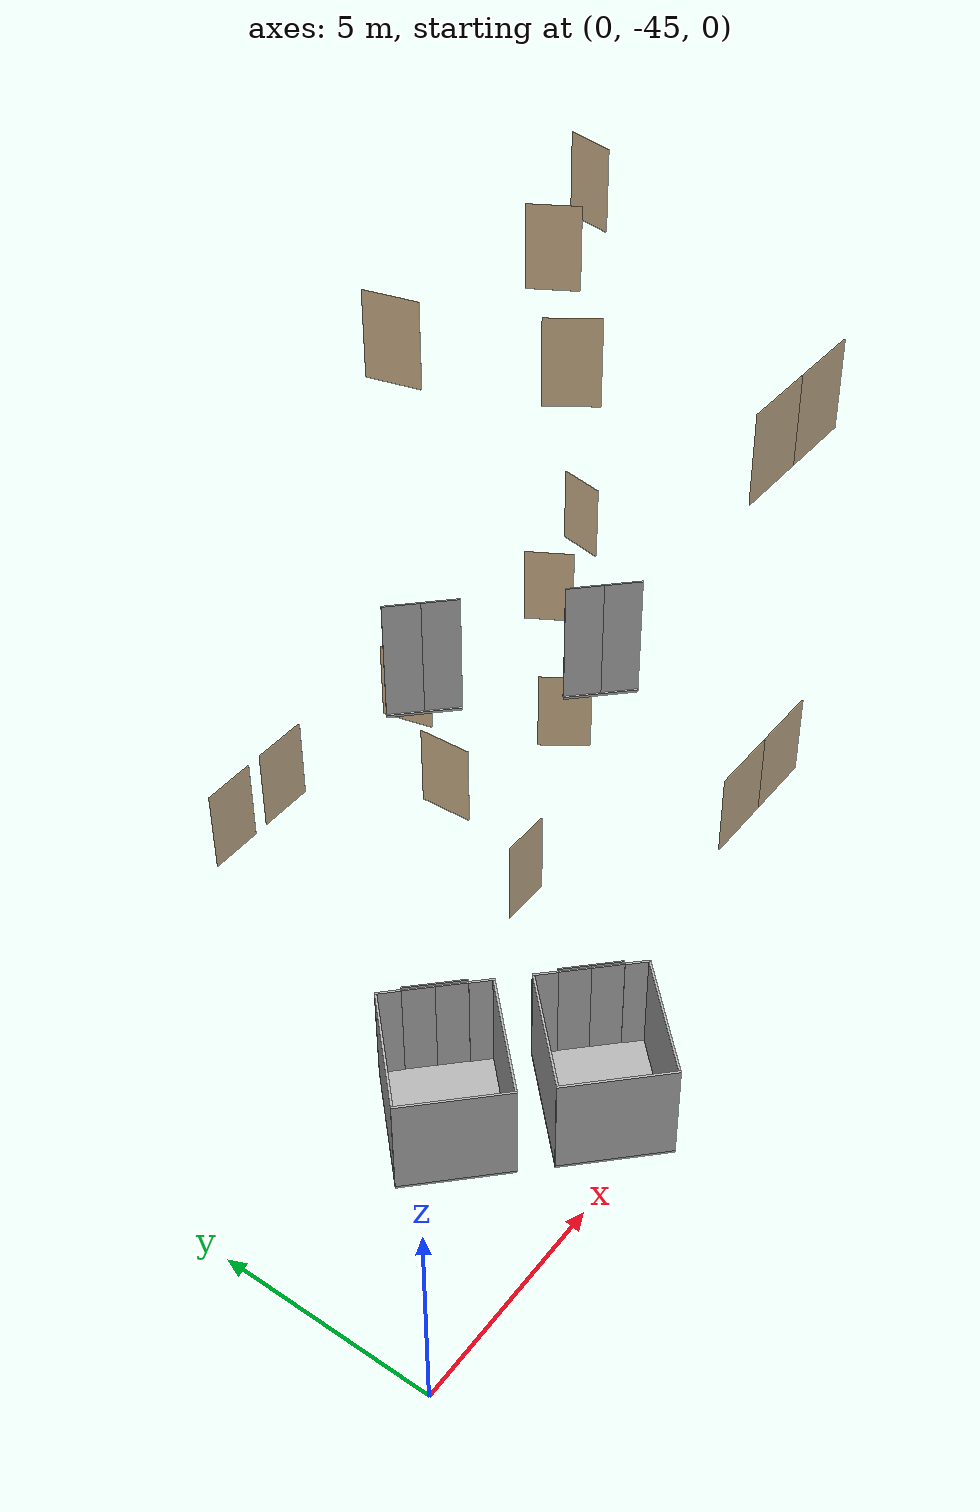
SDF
<sdf version="1.7">
 <world name="sim_world">
  <model name="L1_clinic_a">
   <pose>17.010597669320425 -41.768955040190804 0.0 0 0 3.141592653589793</pose>
   <link name="right">
    <pose>0.8791594554055622 0 1.11 0 0 0</pose>
    <visual name="right_visual">
     <geometry><box><size>1.7483189108111243 0.03 2.2</size></box></geometry>
     <material>
      <ambient>0.5 0.25 0 0.6</ambient>
      <diffuse>0.5 0.25 0 0.6</diffuse>
      <pbr><metal><metalness>0.0</metalness></metal></pbr>
     </material>
    </visual>
    <collision name="right_collision">
     <geometry><box><size>1.7483189108111243 0.03 2.2</size></box></geometry>
     <surface><contact><collide_bitmask>0x02</collide_bitmask></contact></surface>
    </collision>
    <inertial>
     <mass>50.0</mass>
     <inertia><ixx>20.17041666666667</ixx><iyy>32.90257922458249</iyy><izz>12.739662557915818</izz></inertia>
    </inertial>
   </link>
   <joint name="right_joint" type="prismatic">
    <parent>world</parent>
    <child>right</child>
    <axis>
     <xyz>1 0 0</xyz>
     <limit><lower>0.0</lower><upper>1.7583189108111243</upper><effort>500.0</effort></limit>
    </axis>
   </joint>
   <link name="left">
    <pose>-0.8791594554055622 0 1.11 0 0 0</pose>
    <visual name="left_visual">
     <geometry><box><size>1.7483189108111243 0.03 2.2</size></box></geometry>
     <material>
      <ambient>0.5 0.25 0 0.6</ambient>
      <diffuse>0.5 0.25 0 0.6</diffuse>
      <pbr><metal><metalness>0.0</metalness></metal></pbr>
     </material>
    </visual>
    <collision name="left_collision">
     <geometry><box><size>1.7483189108111243 0.03 2.2</size></box></geometry>
     <surface><contact><collide_bitmask>0x02</collide_bitmask></contact></surface>
    </collision>
    <inertial>
     <mass>50.0</mass>
     <inertia><ixx>20.17041666666667</ixx><iyy>32.90257922458249</iyy><izz>12.739662557915818</izz></inertia>
    </inertial>
   </link>
   <joint name="left_joint" type="prismatic">
    <parent>world</parent>
    <child>left</child>
    <axis>
     <xyz>1 0 0</xyz>
     <limit><lower>-1.7583189108111243</lower><upper>0.0</upper><effort>500.0</effort></limit>
    </axis>
   </joint>
   <plugin name="door" filename="libdoor.so">
    <v_max_door>0.2</v_max_door>
    <a_max_door>0.2</a_max_door>
    <a_nom_door>0.08</a_nom_door>
    <dx_min_door>0.001</dx_min_door>
    <f_max_door>100.0</f_max_door>
    <door name="L1_clinic_a" type="DoubleSlidingDoor" left_joint_name="left_joint" right_joint_name="right_joint"/>
   </plugin>
  </model>
  <model name="L1_left_consult_rm_7_outer">
   <pose>16.104374831737253 -36.70911888004311 0.0 0 0 -0.9670545342019088</pose>
   <static>true</static>
   <link name="right">
    <pose>0 0 1.11 0 0 0</pose>
    <visual name="right_visual">
     <geometry><box><size>1.3074913466446625 0.03 2.2</size></box></geometry>
     <material>
      <ambient>0.5 0.25 0 0.6</ambient>
      <diffuse>0.5 0.25 0 0.6</diffuse>
      <pbr><metal><metalness>0.0</metalness></metal></pbr>
     </material>
    </visual>
    <collision name="right_collision">
     <geometry><box><size>1.3074913466446625 0.03 2.2</size></box></geometry>
     <surface><contact><collide_bitmask>0x02</collide_bitmask></contact></surface>
    </collision>
    <inertial>
     <mass>50.0</mass>
     <inertia><ixx>20.17041666666667</ixx><iyy>27.289723423127807</iyy><izz>7.1268067564611375</izz></inertia>
    </inertial>
   </link>
   <joint name="right_joint" type="prismatic">
    <parent>world</parent>
    <child>right</child>
    <axis>
     <xyz>1 0 0</xyz>
     <limit><lower>0.0</lower><upper>1.3174913466446625</upper><effort>500.0</effort></limit>
    </axis>
   </joint>
  </model>
  <model name="L1_left_consult_rm_8_outer">
   <pose>14.54766162839892 -33.0019806930503 0.0 0 0 -1.3439871844568383</pose>
   <static>true</static>
   <link name="right">
    <pose>0 0 1.11 0 0 0</pose>
    <visual name="right_visual">
     <geometry><box><size>1.3621445813119888 0.03 2.2</size></box></geometry>
     <material>
      <ambient>0.5 0.25 0 0.6</ambient>
      <diffuse>0.5 0.25 0 0.6</diffuse>
      <pbr><metal><metalness>0.0</metalness></metal></pbr>
     </material>
    </visual>
    <collision name="right_collision">
     <geometry><box><size>1.3621445813119888 0.03 2.2</size></box></geometry>
     <surface><contact><collide_bitmask>0x02</collide_bitmask></contact></surface>
    </collision>
    <inertial>
     <mass>50.0</mass>
     <inertia><ixx>20.17041666666667</ixx><iyy>27.897657751656727</iyy><izz>7.734741084990055</izz></inertia>
    </inertial>
   </link>
   <joint name="right_joint" type="prismatic">
    <parent>world</parent>
    <child>right</child>
    <axis>
     <xyz>1 0 0</xyz>
     <limit><lower>0.0</lower><upper>1.3721445813119888</upper><effort>500.0</effort></limit>
    </axis>
   </joint>
  </model>
  <model name="L1_wc_1">
   <pose>11.200928810430376 -39.07548555824779 0.0 0 0 0.003911519091325118</pose>
   <static>true</static>
   <link name="right">
    <pose>0 0 1.11 0 0 0</pose>
    <visual name="right_visual">
     <geometry><box><size>1.2426652499551487 0.03 2.2</size></box></geometry>
     <material>
      <ambient>0.5 0.25 0 0.6</ambient>
      <diffuse>0.5 0.25 0 0.6</diffuse>
      <pbr><metal><metalness>0.0</metalness></metal></pbr>
     </material>
    </visual>
    <collision name="right_collision">
     <geometry><box><size>1.2426652499551487 0.03 2.2</size></box></geometry>
     <surface><contact><collide_bitmask>0x02</collide_bitmask></contact></surface>
    </collision>
    <inertial>
     <mass>50.0</mass>
     <inertia><ixx>20.17041666666667</ixx><iyy>26.600903847692056</iyy><izz>6.437987181025385</izz></inertia>
    </inertial>
   </link>
   <joint name="right_joint" type="revolute">
    <parent>world</parent>
    <child>right</child>
    <axis><xyz>0 0 1</xyz><limit><lower>0</lower><upper>1.57</upper></limit></axis>
    <pose>0.6263326249775744 0 0 0 0 0</pose>
   </joint>
  </model>
  <model name="L1_hr">
   <pose>12.55797469328104 -35.737919695396364 0.0 0 0 -1.5363800665340395</pose>
   <static>true</static>
   <link name="right">
    <pose>0 0 1.11 0 0 0</pose>
    <visual name="right_visual">
     <geometry><box><size>1.3419909622330712 0.03 2.2</size></box></geometry>
     <material>
      <ambient>0.5 0.25 0 0.6</ambient>
      <diffuse>0.5 0.25 0 0.6</diffuse>
      <pbr><metal><metalness>0.0</metalness></metal></pbr>
     </material>
    </visual>
    <collision name="right_collision">
     <geometry><box><size>1.3419909622330712 0.03 2.2</size></box></geometry>
     <surface><contact><collide_bitmask>0x02</collide_bitmask></contact></surface>
    </collision>
    <inertial>
     <mass>50.0</mass>
     <inertia><ixx>20.17041666666667</ixx><iyy>27.670582261313523</iyy><izz>7.507665594646852</izz></inertia>
    </inertial>
   </link>
   <joint name="right_joint" type="revolute">
    <parent>world</parent>
    <child>right</child>
    <axis><xyz>0 0 -1</xyz><limit><lower>0</lower><upper>1.57</upper></limit></axis>
    <pose>0.6759954811165356 0 0 0 0 0</pose>
   </joint>
  </model>
  <model name="L1_dis_wc_2">
   <pose>10.318841583016047 -32.594380985346746 0.0 0 0 -0.002698587139888158</pose>
   <static>true</static>
   <link name="right">
    <pose>0 0 1.11 0 0 0</pose>
    <visual name="right_visual">
     <geometry><box><size>1.4066429798800912 0.03 2.2</size></box></geometry>
     <material>
      <ambient>0.5 0.25 0 0.6</ambient>
      <diffuse>0.5 0.25 0 0.6</diffuse>
      <pbr><metal><metalness>0.0</metalness></metal></pbr>
     </material>
    </visual>
    <collision name="right_collision">
     <geometry><box><size>1.4066429798800912 0.03 2.2</size></box></geometry>
     <surface><contact><collide_bitmask>0x02</collide_bitmask></contact></surface>
    </collision>
    <inertial>
     <mass>50.0</mass>
     <inertia><ixx>20.17041666666667</ixx><iyy>28.4110186368581</iyy><izz>8.248101970191428</izz></inertia>
    </inertial>
   </link>
   <joint name="right_joint" type="prismatic">
    <parent>world</parent>
    <child>right</child>
    <axis>
     <xyz>1 0 0</xyz>
     <limit><lower>0.0</lower><upper>1.4166429798800912</upper><effort>500.0</effort></limit>
    </axis>
   </joint>
  </model>
  <model name="L1_dis_wc_1">
   <pose>8.551961463020662 -32.596292450290406 0.0 0 0 3.141592653589793</pose>
   <static>true</static>
   <link name="right">
    <pose>0 0 1.11 0 0 0</pose>
    <visual name="right_visual">
     <geometry><box><size>1.3391442636821675 0.03 2.2</size></box></geometry>
     <material>
      <ambient>0.5 0.25 0 0.6</ambient>
      <diffuse>0.5 0.25 0 0.6</diffuse>
      <pbr><metal><metalness>0.0</metalness></metal></pbr>
     </material>
    </visual>
    <collision name="right_collision">
     <geometry><box><size>1.3391442636821675 0.03 2.2</size></box></geometry>
     <surface><contact><collide_bitmask>0x02</collide_bitmask></contact></surface>
    </collision>
    <inertial>
     <mass>50.0</mass>
     <inertia><ixx>20.17041666666667</ixx><iyy>27.638780662303567</iyy><izz>7.475863995636895</izz></inertia>
    </inertial>
   </link>
   <joint name="right_joint" type="prismatic">
    <parent>world</parent>
    <child>right</child>
    <axis>
     <xyz>1 0 0</xyz>
     <limit><lower>0.0</lower><upper>1.3491442636821676</upper><effort>500.0</effort></limit>
    </axis>
   </joint>
  </model>
  <model name="L1_left_consult_rm_6_inner">
   <pose>23.07516441675322 -32.36259566939736 0.0 0 0 -1.7753735570339602</pose>
   <static>true</static>
   <link name="right">
    <pose>0 0 1.11 0 0 0</pose>
    <visual name="right_visual">
     <geometry><box><size>1.253056385051704 0.03 2.2</size></box></geometry>
     <material>
      <ambient>0.5 0.25 0 0.6</ambient>
      <diffuse>0.5 0.25 0 0.6</diffuse>
      <pbr><metal><metalness>0.0</metalness></metal></pbr>
     </material>
    </visual>
    <collision name="right_collision">
     <geometry><box><size>1.253056385051704 0.03 2.2</size></box></geometry>
     <surface><contact><collide_bitmask>0x02</collide_bitmask></contact></surface>
    </collision>
    <inertial>
     <mass>50.0</mass>
     <inertia><ixx>20.17041666666667</ixx><iyy>26.70895960049519</iyy><izz>6.5460429338285175</izz></inertia>
    </inertial>
   </link>
   <joint name="right_joint" type="revolute">
    <parent>world</parent>
    <child>right</child>
    <axis><xyz>0 0 -1</xyz><limit><lower>0</lower><upper>1.57</upper></limit></axis>
    <pose>0.631528192525852 0 0 0 0 0</pose>
   </joint>
  </model>
  <model name="L1_left_consult_rm_7_inner">
   <pose>19.927641244567532 -33.51677050882661 0.0 0 0 2.0944857459239765</pose>
   <static>true</static>
   <link name="right">
    <pose>0 0 1.11 0 0 0</pose>
    <visual name="right_visual">
     <geometry><box><size>1.301220628393137 0.03 2.2</size></box></geometry>
     <material>
      <ambient>0.5 0.25 0 0.6</ambient>
      <diffuse>0.5 0.25 0 0.6</diffuse>
      <pbr><metal><metalness>0.0</metalness></metal></pbr>
     </material>
    </visual>
    <collision name="right_collision">
     <geometry><box><size>1.301220628393137 0.03 2.2</size></box></geometry>
     <surface><contact><collide_bitmask>0x02</collide_bitmask></contact></surface>
    </collision>
    <inertial>
     <mass>50.0</mass>
     <inertia><ixx>20.17041666666667</ixx><iyy>27.221563015649295</iyy><izz>7.058646348982625</izz></inertia>
    </inertial>
   </link>
   <joint name="right_joint" type="revolute">
    <parent>world</parent>
    <child>right</child>
    <axis><xyz>0 0 -1</xyz><limit><lower>0</lower><upper>1.57</upper></limit></axis>
    <pose>0.6556103141965685 0 0 0 0 0</pose>
   </joint>
  </model>
  <model name="L2_clinic_a">
   <pose>17.010597669320425 -41.768955040190804 10.0 0 0 3.141592653589793</pose>
   <link name="right">
    <pose>0.8791594554055622 0 1.11 0 0 0</pose>
    <visual name="right_visual">
     <geometry><box><size>1.7483189108111243 0.03 2.2</size></box></geometry>
     <material>
      <ambient>0.5 0.25 0 0.6</ambient>
      <diffuse>0.5 0.25 0 0.6</diffuse>
      <pbr><metal><metalness>0.0</metalness></metal></pbr>
     </material>
    </visual>
    <collision name="right_collision">
     <geometry><box><size>1.7483189108111243 0.03 2.2</size></box></geometry>
     <surface><contact><collide_bitmask>0x02</collide_bitmask></contact></surface>
    </collision>
    <inertial>
     <mass>50.0</mass>
     <inertia><ixx>20.17041666666667</ixx><iyy>32.90257922458249</iyy><izz>12.739662557915818</izz></inertia>
    </inertial>
   </link>
   <joint name="right_joint" type="prismatic">
    <parent>world</parent>
    <child>right</child>
    <axis>
     <xyz>1 0 0</xyz>
     <limit><lower>0.0</lower><upper>1.7583189108111243</upper><effort>500.0</effort></limit>
    </axis>
   </joint>
   <link name="left">
    <pose>-0.8791594554055622 0 1.11 0 0 0</pose>
    <visual name="left_visual">
     <geometry><box><size>1.7483189108111243 0.03 2.2</size></box></geometry>
     <material>
      <ambient>0.5 0.25 0 0.6</ambient>
      <diffuse>0.5 0.25 0 0.6</diffuse>
      <pbr><metal><metalness>0.0</metalness></metal></pbr>
     </material>
    </visual>
    <collision name="left_collision">
     <geometry><box><size>1.7483189108111243 0.03 2.2</size></box></geometry>
     <surface><contact><collide_bitmask>0x02</collide_bitmask></contact></surface>
    </collision>
    <inertial>
     <mass>50.0</mass>
     <inertia><ixx>20.17041666666667</ixx><iyy>32.90257922458249</iyy><izz>12.739662557915818</izz></inertia>
    </inertial>
   </link>
   <joint name="left_joint" type="prismatic">
    <parent>world</parent>
    <child>left</child>
    <axis>
     <xyz>1 0 0</xyz>
     <limit><lower>-1.7583189108111243</lower><upper>0.0</upper><effort>500.0</effort></limit>
    </axis>
   </joint>
   <plugin name="door" filename="libdoor.so">
    <v_max_door>0.2</v_max_door>
    <a_max_door>0.2</a_max_door>
    <a_nom_door>0.08</a_nom_door>
    <dx_min_door>0.001</dx_min_door>
    <f_max_door>100.0</f_max_door>
    <door name="L2_clinic_a" type="DoubleSlidingDoor" left_joint_name="left_joint" right_joint_name="right_joint"/>
   </plugin>
  </model>
  <model name="L2_left_consult_rm_7_outer">
   <pose>16.104374831737253 -36.70911888004311 10.0 0 0 -0.9670545342019088</pose>
   <static>true</static>
   <link name="right">
    <pose>0 0 1.11 0 0 0</pose>
    <visual name="right_visual">
     <geometry><box><size>1.3074913466446625 0.03 2.2</size></box></geometry>
     <material>
      <ambient>0.5 0.25 0 0.6</ambient>
      <diffuse>0.5 0.25 0 0.6</diffuse>
      <pbr><metal><metalness>0.0</metalness></metal></pbr>
     </material>
    </visual>
    <collision name="right_collision">
     <geometry><box><size>1.3074913466446625 0.03 2.2</size></box></geometry>
     <surface><contact><collide_bitmask>0x02</collide_bitmask></contact></surface>
    </collision>
    <inertial>
     <mass>50.0</mass>
     <inertia><ixx>20.17041666666667</ixx><iyy>27.289723423127807</iyy><izz>7.1268067564611375</izz></inertia>
    </inertial>
   </link>
   <joint name="right_joint" type="prismatic">
    <parent>world</parent>
    <child>right</child>
    <axis>
     <xyz>1 0 0</xyz>
     <limit><lower>0.0</lower><upper>1.3174913466446625</upper><effort>500.0</effort></limit>
    </axis>
   </joint>
  </model>
  <model name="L2_left_consult_rm_8_outer">
   <pose>14.54766162839892 -33.0019806930503 10.0 0 0 -1.3439871844568383</pose>
   <static>true</static>
   <link name="right">
    <pose>0 0 1.11 0 0 0</pose>
    <visual name="right_visual">
     <geometry><box><size>1.3621445813119888 0.03 2.2</size></box></geometry>
     <material>
      <ambient>0.5 0.25 0 0.6</ambient>
      <diffuse>0.5 0.25 0 0.6</diffuse>
      <pbr><metal><metalness>0.0</metalness></metal></pbr>
     </material>
    </visual>
    <collision name="right_collision">
     <geometry><box><size>1.3621445813119888 0.03 2.2</size></box></geometry>
     <surface><contact><collide_bitmask>0x02</collide_bitmask></contact></surface>
    </collision>
    <inertial>
     <mass>50.0</mass>
     <inertia><ixx>20.17041666666667</ixx><iyy>27.897657751656727</iyy><izz>7.734741084990055</izz></inertia>
    </inertial>
   </link>
   <joint name="right_joint" type="prismatic">
    <parent>world</parent>
    <child>right</child>
    <axis>
     <xyz>1 0 0</xyz>
     <limit><lower>0.0</lower><upper>1.3721445813119888</upper><effort>500.0</effort></limit>
    </axis>
   </joint>
  </model>
  <model name="L2_left_consult_rm_7_inner">
   <pose>19.927641244567532 -33.51677050882661 10.0 0 0 2.0944857459239765</pose>
   <static>true</static>
   <link name="right">
    <pose>0 0 1.11 0 0 0</pose>
    <visual name="right_visual">
     <geometry><box><size>1.301220628393137 0.03 2.2</size></box></geometry>
     <material>
      <ambient>0.5 0.25 0 0.6</ambient>
      <diffuse>0.5 0.25 0 0.6</diffuse>
      <pbr><metal><metalness>0.0</metalness></metal></pbr>
     </material>
    </visual>
    <collision name="right_collision">
     <geometry><box><size>1.301220628393137 0.03 2.2</size></box></geometry>
     <surface><contact><collide_bitmask>0x02</collide_bitmask></contact></surface>
    </collision>
    <inertial>
     <mass>50.0</mass>
     <inertia><ixx>20.17041666666667</ixx><iyy>27.221563015649295</iyy><izz>7.058646348982625</izz></inertia>
    </inertial>
   </link>
   <joint name="right_joint" type="revolute">
    <parent>world</parent>
    <child>right</child>
    <axis><xyz>0 0 -1</xyz><limit><lower>0</lower><upper>1.57</upper></limit></axis>
    <pose>0.6556103141965685 0 0 0 0 0</pose>
   </joint>
  </model>
  <model name="L2_left_consult_rm_6_inner">
   <pose>23.07516441675322 -32.36259566939736 10.0 0 0 -1.7753735570339602</pose>
   <static>true</static>
   <link name="right">
    <pose>0 0 1.11 0 0 0</pose>
    <visual name="right_visual">
     <geometry><box><size>1.253056385051704 0.03 2.2</size></box></geometry>
     <material>
      <ambient>0.5 0.25 0 0.6</ambient>
      <diffuse>0.5 0.25 0 0.6</diffuse>
      <pbr><metal><metalness>0.0</metalness></metal></pbr>
     </material>
    </visual>
    <collision name="right_collision">
     <geometry><box><size>1.253056385051704 0.03 2.2</size></box></geometry>
     <surface><contact><collide_bitmask>0x02</collide_bitmask></contact></surface>
    </collision>
    <inertial>
     <mass>50.0</mass>
     <inertia><ixx>20.17041666666667</ixx><iyy>26.70895960049519</iyy><izz>6.5460429338285175</izz></inertia>
    </inertial>
   </link>
   <joint name="right_joint" type="revolute">
    <parent>world</parent>
    <child>right</child>
    <axis><xyz>0 0 -1</xyz><limit><lower>0</lower><upper>1.57</upper></limit></axis>
    <pose>0.631528192525852 0 0 0 0 0</pose>
   </joint>
  </model>
  <model name="ShaftDoor_lift_24_L1_lift_24_door">
   <pose>6.318455073942428 -40.28272590672457 0.0 0 0 -0.785</pose>
   <link name="right_door">
    <pose>0.35 0 1.25 0 0 0</pose>
    <visual name="right_door_visual">
     <geometry><box><size>0.7 0.03 2.5</size></box></geometry>
     <material>
      <ambient>0.5 0.5 0.5 1</ambient>
      <diffuse>0.7 0.7 0.7 1</diffuse>
      <specular>0.6 0.6 0.6 1</specular>
      <emissive>0.1 0.1 0.1 1</emissive>
     </material>
    </visual>
    <collision name="right_door_collision">
     <geometry><box><size>0.7 0.03 2.5</size></box></geometry>
     <surface><contact><collide_bitmask>0x02</collide_bitmask></contact></surface>
    </collision>
   </link>
   <joint name="right_joint" type="prismatic">
    <parent>world</parent>
    <child>right_door</child>
    <axis><xyz>1 0 0</xyz><limit><lower>0</lower><upper>0.7</upper></limit></axis>
   </joint>
   <link name="left_door">
    <pose>-0.35 0 1.25 0 0 0</pose>
    <visual name="left_door_visual">
     <geometry><box><size>0.7 0.03 2.5</size></box></geometry>
     <material>
      <ambient>0.5 0.5 0.5 1</ambient>
      <diffuse>0.7 0.7 0.7 1</diffuse>
      <specular>0.6 0.6 0.6 1</specular>
      <emissive>0.1 0.1 0.1 1</emissive>
     </material>
    </visual>
    <collision name="left_door_collision">
     <geometry><box><size>0.7 0.03 2.5</size></box></geometry>
     <surface><contact><collide_bitmask>0x02</collide_bitmask></contact></surface>
    </collision>
   </link>
   <joint name="left_joint" type="prismatic">
    <parent>world</parent>
    <child>left_door</child>
    <axis><xyz>1 0 0</xyz><limit><lower>-0.7</lower><upper>0</upper></limit></axis>
   </joint>
   <link name="ramp">
    <pose>0 0 -0.025 0 0 0</pose>
    <visual name="ramp_visual">
     <geometry><box><size>1.4 0.1 0.05</size></box></geometry>
     <material>
      <ambient>0.5 0.5 0.5 1</ambient>
      <diffuse>0.7 0.7 0.7 1</diffuse>
      <specular>0.6 0.6 0.6 1</specular>
      <emissive>0.1 0.1 0.1 1</emissive>
     </material>
    </visual>
    <collision name="ramp_collision">
     <geometry><box><size>1.4 0.1 0.05</size></box></geometry>
     <surface><contact><collide_bitmask>0x02</collide_bitmask></contact></surface>
    </collision>
   </link>
   <joint name="ramp_joint" type="fixed"><parent>world</parent><child>ramp</child></joint>
  </model>
  <model name="ShaftDoor_lift_24_L2_lift_24_door">
   <pose>6.318455073942428 -40.28272590672457 10.0 0 0 -0.785</pose>
   <link name="right_door">
    <pose>0.35 0 1.25 0 0 0</pose>
    <visual name="right_door_visual">
     <geometry><box><size>0.7 0.03 2.5</size></box></geometry>
     <material>
      <ambient>0.5 0.5 0.5 1</ambient>
      <diffuse>0.7 0.7 0.7 1</diffuse>
      <specular>0.6 0.6 0.6 1</specular>
      <emissive>0.1 0.1 0.1 1</emissive>
     </material>
    </visual>
    <collision name="right_door_collision">
     <geometry><box><size>0.7 0.03 2.5</size></box></geometry>
     <surface><contact><collide_bitmask>0x02</collide_bitmask></contact></surface>
    </collision>
   </link>
   <joint name="right_joint" type="prismatic">
    <parent>world</parent>
    <child>right_door</child>
    <axis><xyz>1 0 0</xyz><limit><lower>0</lower><upper>0.7</upper></limit></axis>
   </joint>
   <link name="left_door">
    <pose>-0.35 0 1.25 0 0 0</pose>
    <visual name="left_door_visual">
     <geometry><box><size>0.7 0.03 2.5</size></box></geometry>
     <material>
      <ambient>0.5 0.5 0.5 1</ambient>
      <diffuse>0.7 0.7 0.7 1</diffuse>
      <specular>0.6 0.6 0.6 1</specular>
      <emissive>0.1 0.1 0.1 1</emissive>
     </material>
    </visual>
    <collision name="left_door_collision">
     <geometry><box><size>0.7 0.03 2.5</size></box></geometry>
     <surface><contact><collide_bitmask>0x02</collide_bitmask></contact></surface>
    </collision>
   </link>
   <joint name="left_joint" type="prismatic">
    <parent>world</parent>
    <child>left_door</child>
    <axis><xyz>1 0 0</xyz><limit><lower>-0.7</lower><upper>0</upper></limit></axis>
   </joint>
   <link name="ramp">
    <pose>0 0 -0.025 0 0 0</pose>
    <visual name="ramp_visual">
     <geometry><box><size>1.4 0.1 0.05</size></box></geometry>
     <material>
      <ambient>0.5 0.5 0.5 1</ambient>
      <diffuse>0.7 0.7 0.7 1</diffuse>
      <specular>0.6 0.6 0.6 1</specular>
      <emissive>0.1 0.1 0.1 1</emissive>
     </material>
    </visual>
    <collision name="ramp_collision">
     <geometry><box><size>1.4 0.1 0.05</size></box></geometry>
     <surface><contact><collide_bitmask>0x02</collide_bitmask></contact></surface>
    </collision>
   </link>
   <joint name="ramp_joint" type="fixed"><parent>world</parent><child>ramp</child></joint>
  </model>
  <model name="lift_24">
   <link name="platform">
    <inertial><mass>1200</mass><inertia><ixx>625.25</ixx><iyy>900.25</iyy><izz>1525.0</izz></inertia></inertial>
    <visual name="floor_visual">
     <pose>0 0 -0.025 0 0 0</pose>
     <geometry><box><size>2.5 3.0 0.05</size></box></geometry>
     <material>
      <ambient>0.5 0.5 0.5 1</ambient>
      <diffuse>0.7 0.7 0.7 1</diffuse>
      <specular>0.6 0.6 0.6 1</specular>
      <emissive>0.1 0.1 0.1 1</emissive>
     </material>
    </visual>
    <collision name="floor_collision">
     <pose>0 0 -0.025 0 0 0</pose>
     <geometry><box><size>2.5 3.0 0.05</size></box></geometry>
     <surface><contact><collide_bitmask>0x01</collide_bitmask></contact></surface>
    </collision>
    <visual name="frontwall1_visual">
     <pose>-0.975 1.475 1.25 0 0 0</pose>
     <geometry><box><size>0.55 0.05 2.5</size></box></geometry>
     <material>
      <ambient>0.5 0.5 0.5 1</ambient>
      <diffuse>0.7 0.7 0.7 1</diffuse>
      <specular>0.6 0.6 0.6 1</specular>
      <emissive>0.1 0.1 0.1 1</emissive>
     </material>
    </visual>
    <collision name="frontwall1_collision">
     <pose>-0.975 1.475 1.25 0 0 0</pose>
     <geometry><box><size>0.55 0.05 2.5</size></box></geometry>
     <surface><contact><collide_bitmask>0x01</collide_bitmask></contact></surface>
    </collision>
    <visual name="frontwall2_visual">
     <pose>0.975 1.475 1.25 0 0 0</pose>
     <geometry><box><size>0.55 0.05 2.5</size></box></geometry>
     <material>
      <ambient>0.5 0.5 0.5 1</ambient>
      <diffuse>0.7 0.7 0.7 1</diffuse>
      <specular>0.6 0.6 0.6 1</specular>
      <emissive>0.1 0.1 0.1 1</emissive>
     </material>
    </visual>
    <collision name="frontwall2_collision">
     <pose>0.975 1.475 1.25 0 0 0</pose>
     <geometry><box><size>0.55 0.05 2.5</size></box></geometry>
     <surface><contact><collide_bitmask>0x01</collide_bitmask></contact></surface>
    </collision>
    <visual name="backwall1_visual">
     <pose>0.0 -1.475 1.25 0 0 0</pose>
     <geometry><box><size>2.5 0.05 2.5</size></box></geometry>
     <material>
      <ambient>0.5 0.5 0.5 1</ambient>
      <diffuse>0.7 0.7 0.7 1</diffuse>
      <specular>0.6 0.6 0.6 1</specular>
      <emissive>0.1 0.1 0.1 1</emissive>
     </material>
    </visual>
    <collision name="backwall1_collision">
     <pose>0.0 -1.475 1.25 0 0 0</pose>
     <geometry><box><size>2.5 0.05 2.5</size></box></geometry>
     <surface><contact><collide_bitmask>0x01</collide_bitmask></contact></surface>
    </collision>
    <visual name="leftwall1_visual">
     <pose>-1.225 0.0 1.25 0 0 1.5707963267948966</pose>
     <geometry><box><size>2.9 0.05 2.5</size></box></geometry>
     <material>
      <ambient>0.5 0.5 0.5 1</ambient>
      <diffuse>0.7 0.7 0.7 1</diffuse>
      <specular>0.6 0.6 0.6 1</specular>
      <emissive>0.1 0.1 0.1 1</emissive>
     </material>
    </visual>
    <collision name="leftwall1_collision">
     <pose>-1.225 0.0 1.25 0 0 1.5707963267948966</pose>
     <geometry><box><size>2.9 0.05 2.5</size></box></geometry>
     <surface><contact><collide_bitmask>0x01</collide_bitmask></contact></surface>
    </collision>
    <visual name="rightwall1_visual">
     <pose>1.225 0.0 1.25 0 0 1.5707963267948966</pose>
     <geometry><box><size>2.9 0.05 2.5</size></box></geometry>
     <material>
      <ambient>0.5 0.5 0.5 1</ambient>
      <diffuse>0.7 0.7 0.7 1</diffuse>
      <specular>0.6 0.6 0.6 1</specular>
      <emissive>0.1 0.1 0.1 1</emissive>
     </material>
    </visual>
    <collision name="rightwall1_collision">
     <pose>1.225 0.0 1.25 0 0 1.5707963267948966</pose>
     <geometry><box><size>2.9 0.05 2.5</size></box></geometry>
     <surface><contact><collide_bitmask>0x01</collide_bitmask></contact></surface>
    </collision>
   </link>
   <joint name="cabin_joint" type="prismatic">
    <parent>world</parent>
    <child>platform</child>
    <axis><xyz>0 0 1</xyz></axis>
   </joint>
   <link name="CabinDoor_lift_24_lift_24_door_right_door">
    <pose>0.35 1.475 1.25 0 0 0.0</pose>
    <visual name="CabinDoor_lift_24_lift_24_door_right_door_visual">
     <geometry><box><size>0.7 0.03 2.5</size></box></geometry>
     <material>
      <ambient>0.5 0.5 0.5 1</ambient>
      <diffuse>0.7 0.7 0.7 1</diffuse>
      <specular>0.6 0.6 0.6 1</specular>
      <emissive>0.1 0.1 0.1 1</emissive>
     </material>
    </visual>
    <collision name="CabinDoor_lift_24_lift_24_door_right_door_collision">
     <geometry><box><size>0.7 0.03 2.5</size></box></geometry>
     <surface><contact><collide_bitmask>0x02</collide_bitmask></contact></surface>
    </collision>
   </link>
   <joint name="CabinDoor_lift_24_lift_24_door_right_joint" type="prismatic">
    <parent>platform</parent>
    <child>CabinDoor_lift_24_lift_24_door_right_door</child>
    <axis><xyz>1 0 0</xyz><limit><lower>0</lower><upper>0.7</upper></limit></axis>
   </joint>
   <link name="CabinDoor_lift_24_lift_24_door_left_door">
    <pose>-0.35 1.475 1.25 0 0 0.0</pose>
    <visual name="CabinDoor_lift_24_lift_24_door_left_door_visual">
     <geometry><box><size>0.7 0.03 2.5</size></box></geometry>
     <material>
      <ambient>0.5 0.5 0.5 1</ambient>
      <diffuse>0.7 0.7 0.7 1</diffuse>
      <specular>0.6 0.6 0.6 1</specular>
      <emissive>0.1 0.1 0.1 1</emissive>
     </material>
    </visual>
    <collision name="CabinDoor_lift_24_lift_24_door_left_door_collision">
     <geometry><box><size>0.7 0.03 2.5</size></box></geometry>
     <surface><contact><collide_bitmask>0x02</collide_bitmask></contact></surface>
    </collision>
   </link>
   <joint name="CabinDoor_lift_24_lift_24_door_left_joint" type="prismatic">
    <parent>platform</parent>
    <child>CabinDoor_lift_24_lift_24_door_left_door</child>
    <axis><xyz>1 0 0</xyz><limit><lower>-0.7</lower><upper>0</upper></limit></axis>
   </joint>
   <static>true</static>
   <pose>5.222876043229111 -41.37917772393373 0 0 0 -0.785</pose>
  </model>
  <model name="ShaftDoor_lift_25_L1_lift_25_door">
   <pose>8.633750639497602 -42.59802147227975 0.0 0 0 -0.785</pose>
   <link name="right_door">
    <pose>0.35 0 1.25 0 0 0</pose>
    <visual name="right_door_visual">
     <geometry><box><size>0.7 0.03 2.5</size></box></geometry>
     <material>
      <ambient>0.5 0.5 0.5 1</ambient>
      <diffuse>0.7 0.7 0.7 1</diffuse>
      <specular>0.6 0.6 0.6 1</specular>
      <emissive>0.1 0.1 0.1 1</emissive>
     </material>
    </visual>
    <collision name="right_door_collision">
     <geometry><box><size>0.7 0.03 2.5</size></box></geometry>
     <surface><contact><collide_bitmask>0x02</collide_bitmask></contact></surface>
    </collision>
   </link>
   <joint name="right_joint" type="prismatic">
    <parent>world</parent>
    <child>right_door</child>
    <axis><xyz>1 0 0</xyz><limit><lower>0</lower><upper>0.7</upper></limit></axis>
   </joint>
   <link name="left_door">
    <pose>-0.35 0 1.25 0 0 0</pose>
    <visual name="left_door_visual">
     <geometry><box><size>0.7 0.03 2.5</size></box></geometry>
     <material>
      <ambient>0.5 0.5 0.5 1</ambient>
      <diffuse>0.7 0.7 0.7 1</diffuse>
      <specular>0.6 0.6 0.6 1</specular>
      <emissive>0.1 0.1 0.1 1</emissive>
     </material>
    </visual>
    <collision name="left_door_collision">
     <geometry><box><size>0.7 0.03 2.5</size></box></geometry>
     <surface><contact><collide_bitmask>0x02</collide_bitmask></contact></surface>
    </collision>
   </link>
   <joint name="left_joint" type="prismatic">
    <parent>world</parent>
    <child>left_door</child>
    <axis><xyz>1 0 0</xyz><limit><lower>-0.7</lower><upper>0</upper></limit></axis>
   </joint>
   <link name="ramp">
    <pose>0 0 -0.025 0 0 0</pose>
    <visual name="ramp_visual">
     <geometry><box><size>1.4 0.1 0.05</size></box></geometry>
     <material>
      <ambient>0.5 0.5 0.5 1</ambient>
      <diffuse>0.7 0.7 0.7 1</diffuse>
      <specular>0.6 0.6 0.6 1</specular>
      <emissive>0.1 0.1 0.1 1</emissive>
     </material>
    </visual>
    <collision name="ramp_collision">
     <geometry><box><size>1.4 0.1 0.05</size></box></geometry>
     <surface><contact><collide_bitmask>0x02</collide_bitmask></contact></surface>
    </collision>
   </link>
   <joint name="ramp_joint" type="fixed"><parent>world</parent><child>ramp</child></joint>
   <plugin name="door" filename="libdoor.so">
    <v_max_door>0.3</v_max_door>
    <a_max_door>0.2</a_max_door>
    <a_nom_door>0.1</a_nom_door>
    <dx_min_door>0.0001</dx_min_door>
    <f_max_door>35.0</f_max_door>
    <door left_joint_name="left_joint" name="ShaftDoor_lift_25_L1_lift_25_door" right_joint_name="right_joint" type="DoubleSlidingDoor"/>
   </plugin>
  </model>
  <model name="ShaftDoor_lift_25_L2_lift_25_door">
   <pose>8.633750639497602 -42.59802147227975 10.0 0 0 -0.785</pose>
   <link name="right_door">
    <pose>0.35 0 1.25 0 0 0</pose>
    <visual name="right_door_visual">
     <geometry><box><size>0.7 0.03 2.5</size></box></geometry>
     <material>
      <ambient>0.5 0.5 0.5 1</ambient>
      <diffuse>0.7 0.7 0.7 1</diffuse>
      <specular>0.6 0.6 0.6 1</specular>
      <emissive>0.1 0.1 0.1 1</emissive>
     </material>
    </visual>
    <collision name="right_door_collision">
     <geometry><box><size>0.7 0.03 2.5</size></box></geometry>
     <surface><contact><collide_bitmask>0x02</collide_bitmask></contact></surface>
    </collision>
   </link>
   <joint name="right_joint" type="prismatic">
    <parent>world</parent>
    <child>right_door</child>
    <axis><xyz>1 0 0</xyz><limit><lower>0</lower><upper>0.7</upper></limit></axis>
   </joint>
   <link name="left_door">
    <pose>-0.35 0 1.25 0 0 0</pose>
    <visual name="left_door_visual">
     <geometry><box><size>0.7 0.03 2.5</size></box></geometry>
     <material>
      <ambient>0.5 0.5 0.5 1</ambient>
      <diffuse>0.7 0.7 0.7 1</diffuse>
      <specular>0.6 0.6 0.6 1</specular>
      <emissive>0.1 0.1 0.1 1</emissive>
     </material>
    </visual>
    <collision name="left_door_collision">
     <geometry><box><size>0.7 0.03 2.5</size></box></geometry>
     <surface><contact><collide_bitmask>0x02</collide_bitmask></contact></surface>
    </collision>
   </link>
   <joint name="left_joint" type="prismatic">
    <parent>world</parent>
    <child>left_door</child>
    <axis><xyz>1 0 0</xyz><limit><lower>-0.7</lower><upper>0</upper></limit></axis>
   </joint>
   <link name="ramp">
    <pose>0 0 -0.025 0 0 0</pose>
    <visual name="ramp_visual">
     <geometry><box><size>1.4 0.1 0.05</size></box></geometry>
     <material>
      <ambient>0.5 0.5 0.5 1</ambient>
      <diffuse>0.7 0.7 0.7 1</diffuse>
      <specular>0.6 0.6 0.6 1</specular>
      <emissive>0.1 0.1 0.1 1</emissive>
     </material>
    </visual>
    <collision name="ramp_collision">
     <geometry><box><size>1.4 0.1 0.05</size></box></geometry>
     <surface><contact><collide_bitmask>0x02</collide_bitmask></contact></surface>
    </collision>
   </link>
   <joint name="ramp_joint" type="fixed"><parent>world</parent><child>ramp</child></joint>
   <plugin name="door" filename="libdoor.so">
    <v_max_door>0.3</v_max_door>
    <a_max_door>0.2</a_max_door>
    <a_nom_door>0.1</a_nom_door>
    <dx_min_door>0.0001</dx_min_door>
    <f_max_door>35.0</f_max_door>
    <door left_joint_name="left_joint" name="ShaftDoor_lift_25_L2_lift_25_door" right_joint_name="right_joint" type="DoubleSlidingDoor"/>
   </plugin>
  </model>
  <model name="lift_25">
   <link name="platform">
    <inertial><mass>1200</mass><inertia><ixx>625.25</ixx><iyy>900.25</iyy><izz>1525.0</izz></inertia></inertial>
    <visual name="floor_visual">
     <pose>0 0 -0.025 0 0 0</pose>
     <geometry><box><size>2.5 3.0 0.05</size></box></geometry>
     <material>
      <ambient>0.5 0.5 0.5 1</ambient>
      <diffuse>0.7 0.7 0.7 1</diffuse>
      <specular>0.6 0.6 0.6 1</specular>
      <emissive>0.1 0.1 0.1 1</emissive>
     </material>
    </visual>
    <collision name="floor_collision">
     <pose>0 0 -0.025 0 0 0</pose>
     <geometry><box><size>2.5 3.0 0.05</size></box></geometry>
     <surface><contact><collide_bitmask>0x01</collide_bitmask></contact></surface>
    </collision>
    <visual name="frontwall1_visual">
     <pose>-0.975 1.475 1.25 0 0 0</pose>
     <geometry><box><size>0.55 0.05 2.5</size></box></geometry>
     <material>
      <ambient>0.5 0.5 0.5 1</ambient>
      <diffuse>0.7 0.7 0.7 1</diffuse>
      <specular>0.6 0.6 0.6 1</specular>
      <emissive>0.1 0.1 0.1 1</emissive>
     </material>
    </visual>
    <collision name="frontwall1_collision">
     <pose>-0.975 1.475 1.25 0 0 0</pose>
     <geometry><box><size>0.55 0.05 2.5</size></box></geometry>
     <surface><contact><collide_bitmask>0x01</collide_bitmask></contact></surface>
    </collision>
    <visual name="frontwall2_visual">
     <pose>0.975 1.475 1.25 0 0 0</pose>
     <geometry><box><size>0.55 0.05 2.5</size></box></geometry>
     <material>
      <ambient>0.5 0.5 0.5 1</ambient>
      <diffuse>0.7 0.7 0.7 1</diffuse>
      <specular>0.6 0.6 0.6 1</specular>
      <emissive>0.1 0.1 0.1 1</emissive>
     </material>
    </visual>
    <collision name="frontwall2_collision">
     <pose>0.975 1.475 1.25 0 0 0</pose>
     <geometry><box><size>0.55 0.05 2.5</size></box></geometry>
     <surface><contact><collide_bitmask>0x01</collide_bitmask></contact></surface>
    </collision>
    <visual name="backwall1_visual">
     <pose>0.0 -1.475 1.25 0 0 0</pose>
     <geometry><box><size>2.5 0.05 2.5</size></box></geometry>
     <material>
      <ambient>0.5 0.5 0.5 1</ambient>
      <diffuse>0.7 0.7 0.7 1</diffuse>
      <specular>0.6 0.6 0.6 1</specular>
      <emissive>0.1 0.1 0.1 1</emissive>
     </material>
    </visual>
    <collision name="backwall1_collision">
     <pose>0.0 -1.475 1.25 0 0 0</pose>
     <geometry><box><size>2.5 0.05 2.5</size></box></geometry>
     <surface><contact><collide_bitmask>0x01</collide_bitmask></contact></surface>
    </collision>
    <visual name="leftwall1_visual">
     <pose>-1.225 0.0 1.25 0 0 1.5707963267948966</pose>
     <geometry><box><size>2.9 0.05 2.5</size></box></geometry>
     <material>
      <ambient>0.5 0.5 0.5 1</ambient>
      <diffuse>0.7 0.7 0.7 1</diffuse>
      <specular>0.6 0.6 0.6 1</specular>
      <emissive>0.1 0.1 0.1 1</emissive>
     </material>
    </visual>
    <collision name="leftwall1_collision">
     <pose>-1.225 0.0 1.25 0 0 1.5707963267948966</pose>
     <geometry><box><size>2.9 0.05 2.5</size></box></geometry>
     <surface><contact><collide_bitmask>0x01</collide_bitmask></contact></surface>
    </collision>
    <visual name="rightwall1_visual">
     <pose>1.225 0.0 1.25 0 0 1.5707963267948966</pose>
     <geometry><box><size>2.9 0.05 2.5</size></box></geometry>
     <material>
      <ambient>0.5 0.5 0.5 1</ambient>
      <diffuse>0.7 0.7 0.7 1</diffuse>
      <specular>0.6 0.6 0.6 1</specular>
      <emissive>0.1 0.1 0.1 1</emissive>
     </material>
    </visual>
    <collision name="rightwall1_collision">
     <pose>1.225 0.0 1.25 0 0 1.5707963267948966</pose>
     <geometry><box><size>2.9 0.05 2.5</size></box></geometry>
     <surface><contact><collide_bitmask>0x01</collide_bitmask></contact></surface>
    </collision>
   </link>
   <joint name="cabin_joint" type="prismatic">
    <parent>world</parent>
    <child>platform</child>
    <axis><xyz>0 0 1</xyz></axis>
   </joint>
   <link name="CabinDoor_lift_25_lift_25_door_right_door">
    <pose>0.35 1.475 1.25 0 0 0.0</pose>
    <visual name="CabinDoor_lift_25_lift_25_door_right_door_visual">
     <geometry><box><size>0.7 0.03 2.5</size></box></geometry>
     <material>
      <ambient>0.5 0.5 0.5 1</ambient>
      <diffuse>0.7 0.7 0.7 1</diffuse>
      <specular>0.6 0.6 0.6 1</specular>
      <emissive>0.1 0.1 0.1 1</emissive>
     </material>
    </visual>
    <collision name="CabinDoor_lift_25_lift_25_door_right_door_collision">
     <geometry><box><size>0.7 0.03 2.5</size></box></geometry>
     <surface><contact><collide_bitmask>0x02</collide_bitmask></contact></surface>
    </collision>
   </link>
   <joint name="CabinDoor_lift_25_lift_25_door_right_joint" type="prismatic">
    <parent>platform</parent>
    <child>CabinDoor_lift_25_lift_25_door_right_door</child>
    <axis><xyz>1 0 0</xyz><limit><lower>0</lower><upper>0.7</upper></limit></axis>
   </joint>
   <link name="CabinDoor_lift_25_lift_25_door_left_door">
    <pose>-0.35 1.475 1.25 0 0 0.0</pose>
    <visual name="CabinDoor_lift_25_lift_25_door_left_door_visual">
     <geometry><box><size>0.7 0.03 2.5</size></box></geometry>
     <material>
      <ambient>0.5 0.5 0.5 1</ambient>
      <diffuse>0.7 0.7 0.7 1</diffuse>
      <specular>0.6 0.6 0.6 1</specular>
      <emissive>0.1 0.1 0.1 1</emissive>
     </material>
    </visual>
    <collision name="CabinDoor_lift_25_lift_25_door_left_door_collision">
     <geometry><box><size>0.7 0.03 2.5</size></box></geometry>
     <surface><contact><collide_bitmask>0x02</collide_bitmask></contact></surface>
    </collision>
   </link>
   <joint name="CabinDoor_lift_25_lift_25_door_left_joint" type="prismatic">
    <parent>platform</parent>
    <child>CabinDoor_lift_25_lift_25_door_left_door</child>
    <axis><xyz>1 0 0</xyz><limit><lower>-0.7</lower><upper>0</upper></limit></axis>
   </joint>
   <plugin name="door" filename="libdoor.so">
    <v_max_door>0.3</v_max_door>
    <a_max_door>0.2</a_max_door>
    <a_nom_door>0.1</a_nom_door>
    <dx_min_door>0.0001</dx_min_door>
    <f_max_door>35.0</f_max_door>
    <door left_joint_name="CabinDoor_lift_25_lift_25_door_left_joint" name="CabinDoor_lift_25_lift_25_door" right_joint_name="CabinDoor_lift_25_lift_25_door_right_joint" type="DoubleSlidingDoor"/>
   </plugin>
   <plugin name="lift" filename="liblift.so">
    <lift_name>lift_25</lift_name>
    <floor name="L1" elevation="0.0">
     <door_pair cabin_door="CabinDoor_lift_25_lift_25_door" shaft_door="ShaftDoor_lift_25_L1_lift_25_door"/>
    </floor>
    <floor name="L2" elevation="10.0">
     <door_pair cabin_door="CabinDoor_lift_25_lift_25_door" shaft_door="ShaftDoor_lift_25_L2_lift_25_door"/>
    </floor>
    <initial_floor>L1</initial_floor>
    <v_max_cabin>2.0</v_max_cabin>
    <a_max_cabin>1.2</a_max_cabin>
    <a_nom_cabin>1.0</a_nom_cabin>
    <dx_min_cabin>0.001</dx_min_cabin>
    <f_max_cabin>25323.0</f_max_cabin>
    <cabin_joint_name>cabin_joint</cabin_joint_name>
   </plugin>
   <pose>7.5381716087842845 -43.694473289488904 0 0 0 -0.785</pose>
  </model>
 </world>
</sdf>
